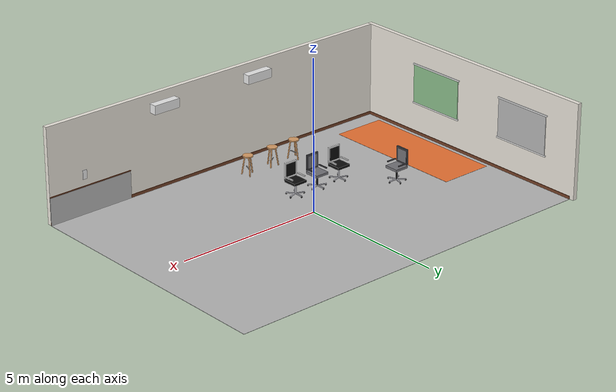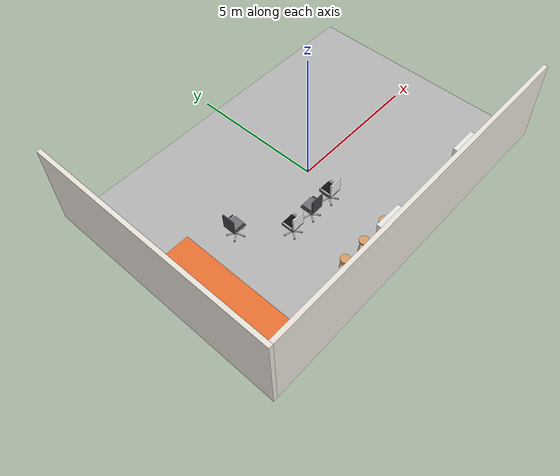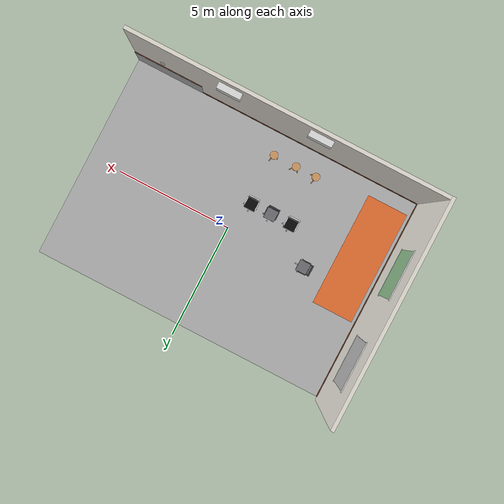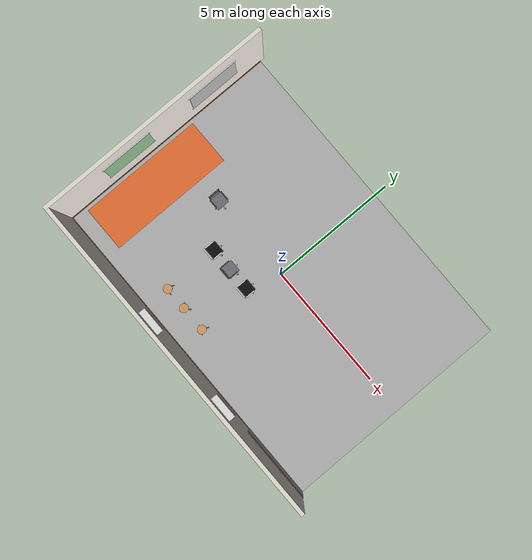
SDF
<sdf version="1.6">
 <world name="mahadev_lab">
  <include><uri>model://sun</uri></include>
  <model name="gplane">
   <static>true</static>
   <link name="plane">
    <collision name="plane">
     <geometry><plane><normal>0 0 1</normal></plane></geometry>
     <surface><friction><ode><mu>100</mu><mu2>100</mu2></ode></friction></surface>
    </collision>
   </link>
  </model>
  <model name="wall_back_windows">
   <static>true</static>
   <pose>-6.5750 0.0000 0.0000 0.0000 0.0000 0.0000</pose>
   <link name="link">
    <visual name="v1">
     <pose>0.0000 0.0000 1.6000 0.0000 0.0000 0.0000</pose>
     <geometry><box><size>0.15 9.3 3.2</size></box></geometry>
     <material>
      <ambient>0.93 0.91 0.87 1</ambient>
      <diffuse>0.93 0.91 0.87 1</diffuse>
      <specular>0.1 0.1 0.1 1</specular>
     </material>
    </visual>
    <collision name="c1">
     <pose>0.0000 0.0000 1.6000 0.0000 0.0000 0.0000</pose>
     <geometry><box><size>0.15 9.3 3.2</size></box></geometry>
     <surface><friction><ode><mu>100</mu><mu2>100</mu2></ode></friction></surface>
    </collision>
    <visual name="v2">
     <pose>0.0850 0.0000 0.0500 0.0000 0.0000 0.0000</pose>
     <geometry><box><size>0.02 9 0.1</size></box></geometry>
     <material>
      <ambient>0.45 0.25 0.15 1</ambient>
      <diffuse>0.45 0.25 0.15 1</diffuse>
      <specular>0.1 0.1 0.1 1</specular>
     </material>
    </visual>
    <visual name="v3">
     <pose>0.0950 -1.4000 1.7500 0.0000 0.0000 0.0000</pose>
     <geometry><box><size>0.03 2 1.3</size></box></geometry>
     <material>
      <ambient>0.55 0.75 0.55 1</ambient>
      <diffuse>0.55 0.75 0.55 1</diffuse>
      <specular>0.1 0.1 0.1 1</specular>
     </material>
    </visual>
    <visual name="v4">
     <pose>0.0950 -1.4000 1.0800 0.0000 0.0000 0.0000</pose>
     <geometry><box><size>0.035 2.08 0.05</size></box></geometry>
     <material>
      <ambient>0.92 0.92 0.92 1</ambient>
      <diffuse>0.92 0.92 0.92 1</diffuse>
      <specular>0.1 0.1 0.1 1</specular>
     </material>
    </visual>
    <visual name="v5">
     <pose>0.0950 -1.4000 2.4200 0.0000 0.0000 0.0000</pose>
     <geometry><box><size>0.035 2.08 0.05</size></box></geometry>
     <material>
      <ambient>0.92 0.92 0.92 1</ambient>
      <diffuse>0.92 0.92 0.92 1</diffuse>
      <specular>0.1 0.1 0.1 1</specular>
     </material>
    </visual>
    <visual name="v6">
     <pose>0.0950 2.4000 1.7500 0.0000 0.0000 0.0000</pose>
     <geometry><box><size>0.03 2 1.3</size></box></geometry>
     <material>
      <script>
       <uri>model://mahadev_lab_media/materials/scripts</uri>
       <uri>model://mahadev_lab_media/materials/textures</uri>
       <name>Mahadev/blinds_1_1</name>
      </script>
     </material>
    </visual>
    <visual name="v7">
     <pose>0.0950 2.4000 1.0800 0.0000 0.0000 0.0000</pose>
     <geometry><box><size>0.035 2.08 0.05</size></box></geometry>
     <material>
      <ambient>0.92 0.92 0.92 1</ambient>
      <diffuse>0.92 0.92 0.92 1</diffuse>
      <specular>0.1 0.1 0.1 1</specular>
     </material>
    </visual>
    <visual name="v8">
     <pose>0.0950 2.4000 2.4200 0.0000 0.0000 0.0000</pose>
     <geometry><box><size>0.035 2.08 0.05</size></box></geometry>
     <material>
      <ambient>0.92 0.92 0.92 1</ambient>
      <diffuse>0.92 0.92 0.92 1</diffuse>
      <specular>0.1 0.1 0.1 1</specular>
     </material>
    </visual>
   </link>
  </model>
  <model name="wall_right_pcs">
   <static>true</static>
   <pose>0.0000 -4.5750 0.0000 0.0000 0.0000 0.0000</pose>
   <link name="link">
    <visual name="v1">
     <pose>0.0000 0.0000 1.6000 0.0000 0.0000 0.0000</pose>
     <geometry><box><size>13 0.15 3.2</size></box></geometry>
     <material>
      <ambient>0.93 0.91 0.87 1</ambient>
      <diffuse>0.93 0.91 0.87 1</diffuse>
      <specular>0.1 0.1 0.1 1</specular>
     </material>
    </visual>
    <collision name="c1">
     <pose>0.0000 0.0000 1.6000 0.0000 0.0000 0.0000</pose>
     <geometry><box><size>13 0.15 3.2</size></box></geometry>
     <surface><friction><ode><mu>100</mu><mu2>100</mu2></ode></friction></surface>
    </collision>
    <visual name="v2">
     <pose>0.0000 0.0850 0.0500 0.0000 0.0000 0.0000</pose>
     <geometry><box><size>13 0.02 0.1</size></box></geometry>
     <material>
      <ambient>0.45 0.25 0.15 1</ambient>
      <diffuse>0.45 0.25 0.15 1</diffuse>
      <specular>0.1 0.1 0.1 1</specular>
     </material>
    </visual>
    <visual name="v3">
     <pose>5.0000 0.0870 0.4500 0.0000 0.0000 0.0000</pose>
     <geometry><box><size>3 0.02 0.9</size></box></geometry>
     <material>
      <script>
       <uri>model://mahadev_lab_media/materials/scripts</uri>
       <uri>model://mahadev_lab_media/materials/textures</uri>
       <name>Mahadev/wall_slats_5_1</name>
      </script>
     </material>
    </visual>
    <visual name="v4">
     <pose>5.0000 0.0870 0.9150 0.0000 0.0000 0.0000</pose>
     <geometry><box><size>3 0.04 0.03</size></box></geometry>
     <material>
      <ambient>0.45 0.25 0.15 1</ambient>
      <diffuse>0.45 0.25 0.15 1</diffuse>
      <specular>0.1 0.1 0.1 1</specular>
     </material>
    </visual>
    <visual name="v5">
     <pose>-1.5000 0.2050 2.7500 0.0000 0.0000 0.0000</pose>
     <geometry><box><size>0.95 0.25 0.3</size></box></geometry>
     <material>
      <ambient>0.92 0.92 0.92 1</ambient>
      <diffuse>0.92 0.92 0.92 1</diffuse>
      <specular>0.1 0.1 0.1 1</specular>
     </material>
    </visual>
    <visual name="v6">
     <pose>2.2000 0.2050 2.7500 0.0000 0.0000 0.0000</pose>
     <geometry><box><size>0.95 0.25 0.3</size></box></geometry>
     <material>
      <ambient>0.92 0.92 0.92 1</ambient>
      <diffuse>0.92 0.92 0.92 1</diffuse>
      <specular>0.1 0.1 0.1 1</specular>
     </material>
    </visual>
    <visual name="v7">
     <pose>5.2000 0.0850 1.3000 0.0000 0.0000 0.0000</pose>
     <geometry><box><size>0.15 0.02 0.3</size></box></geometry>
     <material>
      <ambient>0.92 0.92 0.92 1</ambient>
      <diffuse>0.92 0.92 0.92 1</diffuse>
      <specular>0.1 0.1 0.1 1</specular>
     </material>
    </visual>
   </link>
  </model>
  <model name="floor_tiles">
   <static>true</static>
   <link name="link">
    <visual name="v1">
     <pose>0.0000 0.0000 -0.0050 0.0000 0.0000 0.0000</pose>
     <geometry><box><size>13 9 0.01</size></box></geometry>
     <material>
      <script>
       <uri>model://mahadev_lab_media/materials/scripts</uri>
       <uri>model://mahadev_lab_media/materials/textures</uri>
       <name>Mahadev/floor_tiles_5.4_3.8</name>
      </script>
     </material>
    </visual>
   </link>
  </model>
  <model name="stool_pc_0">
   <static>true</static>
   <pose>-2.2000 -3.4500 0.0000 0.0000 0.0000 1.6058</pose>
   <link name="link">
    <visual name="v1">
     <pose>0.0000 0.0000 0.6400 0.0000 0.0000 0.0000</pose>
     <geometry><cylinder><radius>0.17</radius><length>0.04</length></cylinder></geometry>
     <material>
      <ambient>0.85 0.62 0.4 1</ambient>
      <diffuse>0.85 0.62 0.4 1</diffuse>
      <specular>0.1 0.1 0.1 1</specular>
     </material>
    </visual>
    <visual name="v2">
     <pose>0.1500 0.0000 0.3100 0.0000 -0.1599 0.0000</pose>
     <geometry><cylinder><radius>0.022</radius><length>0.63</length></cylinder></geometry>
     <material>
      <ambient>0.85 0.62 0.4 1</ambient>
      <diffuse>0.85 0.62 0.4 1</diffuse>
      <specular>0.1 0.1 0.1 1</specular>
     </material>
    </visual>
    <visual name="v3">
     <pose>-0.0750 0.1299 0.3100 0.0000 -0.1599 2.0944</pose>
     <geometry><cylinder><radius>0.022</radius><length>0.63</length></cylinder></geometry>
     <material>
      <ambient>0.85 0.62 0.4 1</ambient>
      <diffuse>0.85 0.62 0.4 1</diffuse>
      <specular>0.1 0.1 0.1 1</specular>
     </material>
    </visual>
    <visual name="v4">
     <pose>-0.0750 -0.1299 0.3100 0.0000 -0.1599 4.1888</pose>
     <geometry><cylinder><radius>0.022</radius><length>0.63</length></cylinder></geometry>
     <material>
      <ambient>0.85 0.62 0.4 1</ambient>
      <diffuse>0.85 0.62 0.4 1</diffuse>
      <specular>0.1 0.1 0.1 1</specular>
     </material>
    </visual>
    <visual name="v5">
     <pose>0.0000 0.0000 0.2200 0.0000 0.0000 0.0000</pose>
     <geometry><box><size>0.3 0.02 0.02</size></box></geometry>
     <material>
      <ambient>0.05 0.05 0.05 1</ambient>
      <diffuse>0.05 0.05 0.05 1</diffuse>
      <specular>0.1 0.1 0.1 1</specular>
     </material>
    </visual>
    <collision name="c6">
     <pose>0.0000 0.0000 0.3300 0 0 0</pose>
     <geometry><cylinder><radius>0.2</radius><length>0.66</length></cylinder></geometry>
    </collision>
   </link>
  </model>
  <model name="stool_pc_1">
   <static>true</static>
   <pose>-1.3000 -3.4500 0.0000 0.0000 0.0000 0.6207</pose>
   <link name="link">
    <visual name="v1">
     <pose>0.0000 0.0000 0.6400 0.0000 0.0000 0.0000</pose>
     <geometry><cylinder><radius>0.17</radius><length>0.04</length></cylinder></geometry>
     <material>
      <ambient>0.85 0.62 0.4 1</ambient>
      <diffuse>0.85 0.62 0.4 1</diffuse>
      <specular>0.1 0.1 0.1 1</specular>
     </material>
    </visual>
    <visual name="v2">
     <pose>0.1500 0.0000 0.3100 0.0000 -0.1599 0.0000</pose>
     <geometry><cylinder><radius>0.022</radius><length>0.63</length></cylinder></geometry>
     <material>
      <ambient>0.85 0.62 0.4 1</ambient>
      <diffuse>0.85 0.62 0.4 1</diffuse>
      <specular>0.1 0.1 0.1 1</specular>
     </material>
    </visual>
    <visual name="v3">
     <pose>-0.0750 0.1299 0.3100 0.0000 -0.1599 2.0944</pose>
     <geometry><cylinder><radius>0.022</radius><length>0.63</length></cylinder></geometry>
     <material>
      <ambient>0.85 0.62 0.4 1</ambient>
      <diffuse>0.85 0.62 0.4 1</diffuse>
      <specular>0.1 0.1 0.1 1</specular>
     </material>
    </visual>
    <visual name="v4">
     <pose>-0.0750 -0.1299 0.3100 0.0000 -0.1599 4.1888</pose>
     <geometry><cylinder><radius>0.022</radius><length>0.63</length></cylinder></geometry>
     <material>
      <ambient>0.85 0.62 0.4 1</ambient>
      <diffuse>0.85 0.62 0.4 1</diffuse>
      <specular>0.1 0.1 0.1 1</specular>
     </material>
    </visual>
    <visual name="v5">
     <pose>0.0000 0.0000 0.2200 0.0000 0.0000 0.0000</pose>
     <geometry><box><size>0.3 0.02 0.02</size></box></geometry>
     <material>
      <ambient>0.05 0.05 0.05 1</ambient>
      <diffuse>0.05 0.05 0.05 1</diffuse>
      <specular>0.1 0.1 0.1 1</specular>
     </material>
    </visual>
    <collision name="c6">
     <pose>0.0000 0.0000 0.3300 0 0 0</pose>
     <geometry><cylinder><radius>0.2</radius><length>0.66</length></cylinder></geometry>
    </collision>
   </link>
  </model>
  <model name="stool_pc_2">
   <static>true</static>
   <pose>-0.3000 -3.4500 0.0000 0.0000 0.0000 1.1836</pose>
   <link name="link">
    <visual name="v1">
     <pose>0.0000 0.0000 0.6400 0.0000 0.0000 0.0000</pose>
     <geometry><cylinder><radius>0.17</radius><length>0.04</length></cylinder></geometry>
     <material>
      <ambient>0.85 0.62 0.4 1</ambient>
      <diffuse>0.85 0.62 0.4 1</diffuse>
      <specular>0.1 0.1 0.1 1</specular>
     </material>
    </visual>
    <visual name="v2">
     <pose>0.1500 0.0000 0.3100 0.0000 -0.1599 0.0000</pose>
     <geometry><cylinder><radius>0.022</radius><length>0.63</length></cylinder></geometry>
     <material>
      <ambient>0.85 0.62 0.4 1</ambient>
      <diffuse>0.85 0.62 0.4 1</diffuse>
      <specular>0.1 0.1 0.1 1</specular>
     </material>
    </visual>
    <visual name="v3">
     <pose>-0.0750 0.1299 0.3100 0.0000 -0.1599 2.0944</pose>
     <geometry><cylinder><radius>0.022</radius><length>0.63</length></cylinder></geometry>
     <material>
      <ambient>0.85 0.62 0.4 1</ambient>
      <diffuse>0.85 0.62 0.4 1</diffuse>
      <specular>0.1 0.1 0.1 1</specular>
     </material>
    </visual>
    <visual name="v4">
     <pose>-0.0750 -0.1299 0.3100 0.0000 -0.1599 4.1888</pose>
     <geometry><cylinder><radius>0.022</radius><length>0.63</length></cylinder></geometry>
     <material>
      <ambient>0.85 0.62 0.4 1</ambient>
      <diffuse>0.85 0.62 0.4 1</diffuse>
      <specular>0.1 0.1 0.1 1</specular>
     </material>
    </visual>
    <visual name="v5">
     <pose>0.0000 0.0000 0.2200 0.0000 0.0000 0.0000</pose>
     <geometry><box><size>0.3 0.02 0.02</size></box></geometry>
     <material>
      <ambient>0.05 0.05 0.05 1</ambient>
      <diffuse>0.05 0.05 0.05 1</diffuse>
      <specular>0.1 0.1 0.1 1</specular>
     </material>
    </visual>
    <collision name="c6">
     <pose>0.0000 0.0000 0.3300 0 0 0</pose>
     <geometry><cylinder><radius>0.2</radius><length>0.66</length></cylinder></geometry>
    </collision>
   </link>
  </model>
  <model name="orange_mat">
   <static>true</static>
   <pose>-5.4500 -1.4000 0.0000 0.0000 0.0000 0.0000</pose>
   <link name="link">
    <visual name="v1">
     <pose>0.0000 0.0000 0.0025 0.0000 0.0000 0.0000</pose>
     <geometry><box><size>1.8 5 0.005</size></box></geometry>
     <material>
      <ambient>0.93 0.45 0.2 1</ambient>
      <diffuse>0.93 0.45 0.2 1</diffuse>
      <specular>0.1 0.1 0.1 1</specular>
     </material>
    </visual>
    <collision name="c1">
     <pose>0.0000 0.0000 0.0025 0.0000 0.0000 0.0000</pose>
     <geometry><box><size>1.8 5 0.005</size></box></geometry>
     <surface><friction><ode><mu>100</mu><mu2>100</mu2></ode></friction></surface>
    </collision>
   </link>
  </model>
  <model name="chair_r_0">
   <static>true</static>
   <pose>-2.2000 -1.3000 0.0000 0.0000 0.0000 1.5708</pose>
   <link name="link">
    <visual name="v1">
     <pose>0.1500 0.0000 0.0600 0.0000 0.0000 0.0000</pose>
     <geometry><box><size>0.3 0.04 0.03</size></box></geometry>
     <material>
      <ambient>0.75 0.75 0.78 1</ambient>
      <diffuse>0.75 0.75 0.78 1</diffuse>
      <specular>0.1 0.1 0.1 1</specular>
     </material>
    </visual>
    <visual name="v2">
     <pose>0.2900 0.0000 0.0300 0.0000 0.0000 0.0000</pose>
     <geometry><sphere><radius>0.03</radius></sphere></geometry>
     <material>
      <ambient>0.05 0.05 0.05 1</ambient>
      <diffuse>0.05 0.05 0.05 1</diffuse>
      <specular>0.1 0.1 0.1 1</specular>
     </material>
    </visual>
    <visual name="v3">
     <pose>0.0464 0.1427 0.0600 0.0000 0.0000 1.2566</pose>
     <geometry><box><size>0.3 0.04 0.03</size></box></geometry>
     <material>
      <ambient>0.75 0.75 0.78 1</ambient>
      <diffuse>0.75 0.75 0.78 1</diffuse>
      <specular>0.1 0.1 0.1 1</specular>
     </material>
    </visual>
    <visual name="v4">
     <pose>0.0896 0.2758 0.0300 0.0000 0.0000 0.0000</pose>
     <geometry><sphere><radius>0.03</radius></sphere></geometry>
     <material>
      <ambient>0.05 0.05 0.05 1</ambient>
      <diffuse>0.05 0.05 0.05 1</diffuse>
      <specular>0.1 0.1 0.1 1</specular>
     </material>
    </visual>
    <visual name="v5">
     <pose>-0.1214 0.0882 0.0600 0.0000 0.0000 2.5133</pose>
     <geometry><box><size>0.3 0.04 0.03</size></box></geometry>
     <material>
      <ambient>0.75 0.75 0.78 1</ambient>
      <diffuse>0.75 0.75 0.78 1</diffuse>
      <specular>0.1 0.1 0.1 1</specular>
     </material>
    </visual>
    <visual name="v6">
     <pose>-0.2346 0.1705 0.0300 0.0000 0.0000 0.0000</pose>
     <geometry><sphere><radius>0.03</radius></sphere></geometry>
     <material>
      <ambient>0.05 0.05 0.05 1</ambient>
      <diffuse>0.05 0.05 0.05 1</diffuse>
      <specular>0.1 0.1 0.1 1</specular>
     </material>
    </visual>
    <visual name="v7">
     <pose>-0.1214 -0.0882 0.0600 0.0000 0.0000 3.7699</pose>
     <geometry><box><size>0.3 0.04 0.03</size></box></geometry>
     <material>
      <ambient>0.75 0.75 0.78 1</ambient>
      <diffuse>0.75 0.75 0.78 1</diffuse>
      <specular>0.1 0.1 0.1 1</specular>
     </material>
    </visual>
    <visual name="v8">
     <pose>-0.2346 -0.1705 0.0300 0.0000 0.0000 0.0000</pose>
     <geometry><sphere><radius>0.03</radius></sphere></geometry>
     <material>
      <ambient>0.05 0.05 0.05 1</ambient>
      <diffuse>0.05 0.05 0.05 1</diffuse>
      <specular>0.1 0.1 0.1 1</specular>
     </material>
    </visual>
    <visual name="v9">
     <pose>0.0464 -0.1427 0.0600 0.0000 0.0000 5.0265</pose>
     <geometry><box><size>0.3 0.04 0.03</size></box></geometry>
     <material>
      <ambient>0.75 0.75 0.78 1</ambient>
      <diffuse>0.75 0.75 0.78 1</diffuse>
      <specular>0.1 0.1 0.1 1</specular>
     </material>
    </visual>
    <visual name="v10">
     <pose>0.0896 -0.2758 0.0300 0.0000 0.0000 0.0000</pose>
     <geometry><sphere><radius>0.03</radius></sphere></geometry>
     <material>
      <ambient>0.05 0.05 0.05 1</ambient>
      <diffuse>0.05 0.05 0.05 1</diffuse>
      <specular>0.1 0.1 0.1 1</specular>
     </material>
    </visual>
    <visual name="v11">
     <pose>0.0000 0.0000 0.2700 0.0000 0.0000 0.0000</pose>
     <geometry><cylinder><radius>0.03</radius><length>0.4</length></cylinder></geometry>
     <material>
      <ambient>0.75 0.75 0.78 1</ambient>
      <diffuse>0.75 0.75 0.78 1</diffuse>
      <specular>0.1 0.1 0.1 1</specular>
     </material>
    </visual>
    <visual name="v12">
     <pose>0.0000 0.0000 0.4800 0.0000 0.0000 0.0000</pose>
     <geometry><box><size>0.48 0.48 0.08</size></box></geometry>
     <material>
      <ambient>0.05 0.05 0.05 1</ambient>
      <diffuse>0.05 0.05 0.05 1</diffuse>
      <specular>0.1 0.1 0.1 1</specular>
     </material>
    </visual>
    <visual name="v13">
     <pose>-0.2400 0.0000 0.8000 0.0000 0.0000 0.0000</pose>
     <geometry><box><size>0.05 0.46 0.52</size></box></geometry>
     <material>
      <ambient>0.92 0.92 0.92 1</ambient>
      <diffuse>0.92 0.92 0.92 1</diffuse>
      <specular>0.1 0.1 0.1 1</specular>
     </material>
    </visual>
    <visual name="v14">
     <pose>-0.2150 0.0000 0.8000 0.0000 0.0000 0.0000</pose>
     <geometry><box><size>0.01 0.38 0.42</size></box></geometry>
     <material>
      <ambient>0.05 0.05 0.05 1</ambient>
      <diffuse>0.05 0.05 0.05 1</diffuse>
      <specular>0.1 0.1 0.1 1</specular>
     </material>
    </visual>
    <visual name="v15">
     <pose>-0.0200 -0.2500 0.6200 0.0000 0.0000 0.0000</pose>
     <geometry><box><size>0.36 0.04 0.03</size></box></geometry>
     <material>
      <ambient>0.92 0.92 0.92 1</ambient>
      <diffuse>0.92 0.92 0.92 1</diffuse>
      <specular>0.1 0.1 0.1 1</specular>
     </material>
    </visual>
    <visual name="v16">
     <pose>-0.0200 0.2500 0.6200 0.0000 0.0000 0.0000</pose>
     <geometry><box><size>0.36 0.04 0.03</size></box></geometry>
     <material>
      <ambient>0.92 0.92 0.92 1</ambient>
      <diffuse>0.92 0.92 0.92 1</diffuse>
      <specular>0.1 0.1 0.1 1</specular>
     </material>
    </visual>
    <collision name="c17">
     <pose>0.0000 0.0000 0.2750 0 0 0</pose>
     <geometry><cylinder><radius>0.3</radius><length>0.55</length></cylinder></geometry>
    </collision>
   </link>
  </model>
  <model name="chair_r_1">
   <static>true</static>
   <pose>-1.3000 -1.3000 0.0000 0.0000 0.0000 1.5708</pose>
   <link name="link">
    <visual name="v1">
     <pose>0.1500 0.0000 0.0600 0.0000 0.0000 0.0000</pose>
     <geometry><box><size>0.3 0.04 0.03</size></box></geometry>
     <material>
      <ambient>0.75 0.75 0.78 1</ambient>
      <diffuse>0.75 0.75 0.78 1</diffuse>
      <specular>0.1 0.1 0.1 1</specular>
     </material>
    </visual>
    <visual name="v2">
     <pose>0.2900 0.0000 0.0300 0.0000 0.0000 0.0000</pose>
     <geometry><sphere><radius>0.03</radius></sphere></geometry>
     <material>
      <ambient>0.05 0.05 0.05 1</ambient>
      <diffuse>0.05 0.05 0.05 1</diffuse>
      <specular>0.1 0.1 0.1 1</specular>
     </material>
    </visual>
    <visual name="v3">
     <pose>0.0464 0.1427 0.0600 0.0000 0.0000 1.2566</pose>
     <geometry><box><size>0.3 0.04 0.03</size></box></geometry>
     <material>
      <ambient>0.75 0.75 0.78 1</ambient>
      <diffuse>0.75 0.75 0.78 1</diffuse>
      <specular>0.1 0.1 0.1 1</specular>
     </material>
    </visual>
    <visual name="v4">
     <pose>0.0896 0.2758 0.0300 0.0000 0.0000 0.0000</pose>
     <geometry><sphere><radius>0.03</radius></sphere></geometry>
     <material>
      <ambient>0.05 0.05 0.05 1</ambient>
      <diffuse>0.05 0.05 0.05 1</diffuse>
      <specular>0.1 0.1 0.1 1</specular>
     </material>
    </visual>
    <visual name="v5">
     <pose>-0.1214 0.0882 0.0600 0.0000 0.0000 2.5133</pose>
     <geometry><box><size>0.3 0.04 0.03</size></box></geometry>
     <material>
      <ambient>0.75 0.75 0.78 1</ambient>
      <diffuse>0.75 0.75 0.78 1</diffuse>
      <specular>0.1 0.1 0.1 1</specular>
     </material>
    </visual>
    <visual name="v6">
     <pose>-0.2346 0.1705 0.0300 0.0000 0.0000 0.0000</pose>
     <geometry><sphere><radius>0.03</radius></sphere></geometry>
     <material>
      <ambient>0.05 0.05 0.05 1</ambient>
      <diffuse>0.05 0.05 0.05 1</diffuse>
      <specular>0.1 0.1 0.1 1</specular>
     </material>
    </visual>
    <visual name="v7">
     <pose>-0.1214 -0.0882 0.0600 0.0000 0.0000 3.7699</pose>
     <geometry><box><size>0.3 0.04 0.03</size></box></geometry>
     <material>
      <ambient>0.75 0.75 0.78 1</ambient>
      <diffuse>0.75 0.75 0.78 1</diffuse>
      <specular>0.1 0.1 0.1 1</specular>
     </material>
    </visual>
    <visual name="v8">
     <pose>-0.2346 -0.1705 0.0300 0.0000 0.0000 0.0000</pose>
     <geometry><sphere><radius>0.03</radius></sphere></geometry>
     <material>
      <ambient>0.05 0.05 0.05 1</ambient>
      <diffuse>0.05 0.05 0.05 1</diffuse>
      <specular>0.1 0.1 0.1 1</specular>
     </material>
    </visual>
    <visual name="v9">
     <pose>0.0464 -0.1427 0.0600 0.0000 0.0000 5.0265</pose>
     <geometry><box><size>0.3 0.04 0.03</size></box></geometry>
     <material>
      <ambient>0.75 0.75 0.78 1</ambient>
      <diffuse>0.75 0.75 0.78 1</diffuse>
      <specular>0.1 0.1 0.1 1</specular>
     </material>
    </visual>
    <visual name="v10">
     <pose>0.0896 -0.2758 0.0300 0.0000 0.0000 0.0000</pose>
     <geometry><sphere><radius>0.03</radius></sphere></geometry>
     <material>
      <ambient>0.05 0.05 0.05 1</ambient>
      <diffuse>0.05 0.05 0.05 1</diffuse>
      <specular>0.1 0.1 0.1 1</specular>
     </material>
    </visual>
    <visual name="v11">
     <pose>0.0000 0.0000 0.2700 0.0000 0.0000 0.0000</pose>
     <geometry><cylinder><radius>0.03</radius><length>0.4</length></cylinder></geometry>
     <material>
      <ambient>0.05 0.05 0.05 1</ambient>
      <diffuse>0.05 0.05 0.05 1</diffuse>
      <specular>0.1 0.1 0.1 1</specular>
     </material>
    </visual>
    <visual name="v12">
     <pose>0.0000 0.0000 0.4800 0.0000 0.0000 0.0000</pose>
     <geometry><box><size>0.48 0.48 0.08</size></box></geometry>
     <material>
      <ambient>0.45 0.45 0.47 1</ambient>
      <diffuse>0.45 0.45 0.47 1</diffuse>
      <specular>0.1 0.1 0.1 1</specular>
     </material>
    </visual>
    <visual name="v13">
     <pose>-0.2400 0.0000 0.8000 0.0000 0.0000 0.0000</pose>
     <geometry><box><size>0.05 0.46 0.52</size></box></geometry>
     <material>
      <ambient>0.25 0.25 0.27 1</ambient>
      <diffuse>0.25 0.25 0.27 1</diffuse>
      <specular>0.1 0.1 0.1 1</specular>
     </material>
    </visual>
    <visual name="v14">
     <pose>-0.2150 0.0000 0.8000 0.0000 0.0000 0.0000</pose>
     <geometry><box><size>0.01 0.38 0.42</size></box></geometry>
     <material>
      <ambient>0.45 0.45 0.47 1</ambient>
      <diffuse>0.45 0.45 0.47 1</diffuse>
      <specular>0.1 0.1 0.1 1</specular>
     </material>
    </visual>
    <visual name="v15">
     <pose>-0.0200 -0.2500 0.6200 0.0000 0.0000 0.0000</pose>
     <geometry><box><size>0.36 0.04 0.03</size></box></geometry>
     <material>
      <ambient>0.25 0.25 0.27 1</ambient>
      <diffuse>0.25 0.25 0.27 1</diffuse>
      <specular>0.1 0.1 0.1 1</specular>
     </material>
    </visual>
    <visual name="v16">
     <pose>-0.0200 0.2500 0.6200 0.0000 0.0000 0.0000</pose>
     <geometry><box><size>0.36 0.04 0.03</size></box></geometry>
     <material>
      <ambient>0.25 0.25 0.27 1</ambient>
      <diffuse>0.25 0.25 0.27 1</diffuse>
      <specular>0.1 0.1 0.1 1</specular>
     </material>
    </visual>
    <collision name="c17">
     <pose>0.0000 0.0000 0.2750 0 0 0</pose>
     <geometry><cylinder><radius>0.3</radius><length>0.55</length></cylinder></geometry>
    </collision>
   </link>
  </model>
  <model name="chair_r_2">
   <static>true</static>
   <pose>-0.4000 -1.3000 0.0000 0.0000 0.0000 1.5708</pose>
   <link name="link">
    <visual name="v1">
     <pose>0.1500 0.0000 0.0600 0.0000 0.0000 0.0000</pose>
     <geometry><box><size>0.3 0.04 0.03</size></box></geometry>
     <material>
      <ambient>0.75 0.75 0.78 1</ambient>
      <diffuse>0.75 0.75 0.78 1</diffuse>
      <specular>0.1 0.1 0.1 1</specular>
     </material>
    </visual>
    <visual name="v2">
     <pose>0.2900 0.0000 0.0300 0.0000 0.0000 0.0000</pose>
     <geometry><sphere><radius>0.03</radius></sphere></geometry>
     <material>
      <ambient>0.05 0.05 0.05 1</ambient>
      <diffuse>0.05 0.05 0.05 1</diffuse>
      <specular>0.1 0.1 0.1 1</specular>
     </material>
    </visual>
    <visual name="v3">
     <pose>0.0464 0.1427 0.0600 0.0000 0.0000 1.2566</pose>
     <geometry><box><size>0.3 0.04 0.03</size></box></geometry>
     <material>
      <ambient>0.75 0.75 0.78 1</ambient>
      <diffuse>0.75 0.75 0.78 1</diffuse>
      <specular>0.1 0.1 0.1 1</specular>
     </material>
    </visual>
    <visual name="v4">
     <pose>0.0896 0.2758 0.0300 0.0000 0.0000 0.0000</pose>
     <geometry><sphere><radius>0.03</radius></sphere></geometry>
     <material>
      <ambient>0.05 0.05 0.05 1</ambient>
      <diffuse>0.05 0.05 0.05 1</diffuse>
      <specular>0.1 0.1 0.1 1</specular>
     </material>
    </visual>
    <visual name="v5">
     <pose>-0.1214 0.0882 0.0600 0.0000 0.0000 2.5133</pose>
     <geometry><box><size>0.3 0.04 0.03</size></box></geometry>
     <material>
      <ambient>0.75 0.75 0.78 1</ambient>
      <diffuse>0.75 0.75 0.78 1</diffuse>
      <specular>0.1 0.1 0.1 1</specular>
     </material>
    </visual>
    <visual name="v6">
     <pose>-0.2346 0.1705 0.0300 0.0000 0.0000 0.0000</pose>
     <geometry><sphere><radius>0.03</radius></sphere></geometry>
     <material>
      <ambient>0.05 0.05 0.05 1</ambient>
      <diffuse>0.05 0.05 0.05 1</diffuse>
      <specular>0.1 0.1 0.1 1</specular>
     </material>
    </visual>
    <visual name="v7">
     <pose>-0.1214 -0.0882 0.0600 0.0000 0.0000 3.7699</pose>
     <geometry><box><size>0.3 0.04 0.03</size></box></geometry>
     <material>
      <ambient>0.75 0.75 0.78 1</ambient>
      <diffuse>0.75 0.75 0.78 1</diffuse>
      <specular>0.1 0.1 0.1 1</specular>
     </material>
    </visual>
    <visual name="v8">
     <pose>-0.2346 -0.1705 0.0300 0.0000 0.0000 0.0000</pose>
     <geometry><sphere><radius>0.03</radius></sphere></geometry>
     <material>
      <ambient>0.05 0.05 0.05 1</ambient>
      <diffuse>0.05 0.05 0.05 1</diffuse>
      <specular>0.1 0.1 0.1 1</specular>
     </material>
    </visual>
    <visual name="v9">
     <pose>0.0464 -0.1427 0.0600 0.0000 0.0000 5.0265</pose>
     <geometry><box><size>0.3 0.04 0.03</size></box></geometry>
     <material>
      <ambient>0.75 0.75 0.78 1</ambient>
      <diffuse>0.75 0.75 0.78 1</diffuse>
      <specular>0.1 0.1 0.1 1</specular>
     </material>
    </visual>
    <visual name="v10">
     <pose>0.0896 -0.2758 0.0300 0.0000 0.0000 0.0000</pose>
     <geometry><sphere><radius>0.03</radius></sphere></geometry>
     <material>
      <ambient>0.05 0.05 0.05 1</ambient>
      <diffuse>0.05 0.05 0.05 1</diffuse>
      <specular>0.1 0.1 0.1 1</specular>
     </material>
    </visual>
    <visual name="v11">
     <pose>0.0000 0.0000 0.2700 0.0000 0.0000 0.0000</pose>
     <geometry><cylinder><radius>0.03</radius><length>0.4</length></cylinder></geometry>
     <material>
      <ambient>0.75 0.75 0.78 1</ambient>
      <diffuse>0.75 0.75 0.78 1</diffuse>
      <specular>0.1 0.1 0.1 1</specular>
     </material>
    </visual>
    <visual name="v12">
     <pose>0.0000 0.0000 0.4800 0.0000 0.0000 0.0000</pose>
     <geometry><box><size>0.48 0.48 0.08</size></box></geometry>
     <material>
      <ambient>0.05 0.05 0.05 1</ambient>
      <diffuse>0.05 0.05 0.05 1</diffuse>
      <specular>0.1 0.1 0.1 1</specular>
     </material>
    </visual>
    <visual name="v13">
     <pose>-0.2400 0.0000 0.8000 0.0000 0.0000 0.0000</pose>
     <geometry><box><size>0.05 0.46 0.52</size></box></geometry>
     <material>
      <ambient>0.92 0.92 0.92 1</ambient>
      <diffuse>0.92 0.92 0.92 1</diffuse>
      <specular>0.1 0.1 0.1 1</specular>
     </material>
    </visual>
    <visual name="v14">
     <pose>-0.2150 0.0000 0.8000 0.0000 0.0000 0.0000</pose>
     <geometry><box><size>0.01 0.38 0.42</size></box></geometry>
     <material>
      <ambient>0.05 0.05 0.05 1</ambient>
      <diffuse>0.05 0.05 0.05 1</diffuse>
      <specular>0.1 0.1 0.1 1</specular>
     </material>
    </visual>
    <visual name="v15">
     <pose>-0.0200 -0.2500 0.6200 0.0000 0.0000 0.0000</pose>
     <geometry><box><size>0.36 0.04 0.03</size></box></geometry>
     <material>
      <ambient>0.92 0.92 0.92 1</ambient>
      <diffuse>0.92 0.92 0.92 1</diffuse>
      <specular>0.1 0.1 0.1 1</specular>
     </material>
    </visual>
    <visual name="v16">
     <pose>-0.0200 0.2500 0.6200 0.0000 0.0000 0.0000</pose>
     <geometry><box><size>0.36 0.04 0.03</size></box></geometry>
     <material>
      <ambient>0.92 0.92 0.92 1</ambient>
      <diffuse>0.92 0.92 0.92 1</diffuse>
      <specular>0.1 0.1 0.1 1</specular>
     </material>
    </visual>
    <collision name="c17">
     <pose>0.0000 0.0000 0.2750 0 0 0</pose>
     <geometry><cylinder><radius>0.3</radius><length>0.55</length></cylinder></geometry>
    </collision>
   </link>
  </model>
  <model name="chair_end_back">
   <static>true</static>
   <pose>-3.4500 0.0000 0.0000 0.0000 0.0000 0.0000</pose>
   <link name="link">
    <visual name="v1">
     <pose>0.1500 0.0000 0.0600 0.0000 0.0000 0.0000</pose>
     <geometry><box><size>0.3 0.04 0.03</size></box></geometry>
     <material>
      <ambient>0.75 0.75 0.78 1</ambient>
      <diffuse>0.75 0.75 0.78 1</diffuse>
      <specular>0.1 0.1 0.1 1</specular>
     </material>
    </visual>
    <visual name="v2">
     <pose>0.2900 0.0000 0.0300 0.0000 0.0000 0.0000</pose>
     <geometry><sphere><radius>0.03</radius></sphere></geometry>
     <material>
      <ambient>0.05 0.05 0.05 1</ambient>
      <diffuse>0.05 0.05 0.05 1</diffuse>
      <specular>0.1 0.1 0.1 1</specular>
     </material>
    </visual>
    <visual name="v3">
     <pose>0.0464 0.1427 0.0600 0.0000 0.0000 1.2566</pose>
     <geometry><box><size>0.3 0.04 0.03</size></box></geometry>
     <material>
      <ambient>0.75 0.75 0.78 1</ambient>
      <diffuse>0.75 0.75 0.78 1</diffuse>
      <specular>0.1 0.1 0.1 1</specular>
     </material>
    </visual>
    <visual name="v4">
     <pose>0.0896 0.2758 0.0300 0.0000 0.0000 0.0000</pose>
     <geometry><sphere><radius>0.03</radius></sphere></geometry>
     <material>
      <ambient>0.05 0.05 0.05 1</ambient>
      <diffuse>0.05 0.05 0.05 1</diffuse>
      <specular>0.1 0.1 0.1 1</specular>
     </material>
    </visual>
    <visual name="v5">
     <pose>-0.1214 0.0882 0.0600 0.0000 0.0000 2.5133</pose>
     <geometry><box><size>0.3 0.04 0.03</size></box></geometry>
     <material>
      <ambient>0.75 0.75 0.78 1</ambient>
      <diffuse>0.75 0.75 0.78 1</diffuse>
      <specular>0.1 0.1 0.1 1</specular>
     </material>
    </visual>
    <visual name="v6">
     <pose>-0.2346 0.1705 0.0300 0.0000 0.0000 0.0000</pose>
     <geometry><sphere><radius>0.03</radius></sphere></geometry>
     <material>
      <ambient>0.05 0.05 0.05 1</ambient>
      <diffuse>0.05 0.05 0.05 1</diffuse>
      <specular>0.1 0.1 0.1 1</specular>
     </material>
    </visual>
    <visual name="v7">
     <pose>-0.1214 -0.0882 0.0600 0.0000 0.0000 3.7699</pose>
     <geometry><box><size>0.3 0.04 0.03</size></box></geometry>
     <material>
      <ambient>0.75 0.75 0.78 1</ambient>
      <diffuse>0.75 0.75 0.78 1</diffuse>
      <specular>0.1 0.1 0.1 1</specular>
     </material>
    </visual>
    <visual name="v8">
     <pose>-0.2346 -0.1705 0.0300 0.0000 0.0000 0.0000</pose>
     <geometry><sphere><radius>0.03</radius></sphere></geometry>
     <material>
      <ambient>0.05 0.05 0.05 1</ambient>
      <diffuse>0.05 0.05 0.05 1</diffuse>
      <specular>0.1 0.1 0.1 1</specular>
     </material>
    </visual>
    <visual name="v9">
     <pose>0.0464 -0.1427 0.0600 0.0000 0.0000 5.0265</pose>
     <geometry><box><size>0.3 0.04 0.03</size></box></geometry>
     <material>
      <ambient>0.75 0.75 0.78 1</ambient>
      <diffuse>0.75 0.75 0.78 1</diffuse>
      <specular>0.1 0.1 0.1 1</specular>
     </material>
    </visual>
    <visual name="v10">
     <pose>0.0896 -0.2758 0.0300 0.0000 0.0000 0.0000</pose>
     <geometry><sphere><radius>0.03</radius></sphere></geometry>
     <material>
      <ambient>0.05 0.05 0.05 1</ambient>
      <diffuse>0.05 0.05 0.05 1</diffuse>
      <specular>0.1 0.1 0.1 1</specular>
     </material>
    </visual>
    <visual name="v11">
     <pose>0.0000 0.0000 0.2700 0.0000 0.0000 0.0000</pose>
     <geometry><cylinder><radius>0.03</radius><length>0.4</length></cylinder></geometry>
     <material>
      <ambient>0.05 0.05 0.05 1</ambient>
      <diffuse>0.05 0.05 0.05 1</diffuse>
      <specular>0.1 0.1 0.1 1</specular>
     </material>
    </visual>
    <visual name="v12">
     <pose>0.0000 0.0000 0.4800 0.0000 0.0000 0.0000</pose>
     <geometry><box><size>0.48 0.48 0.08</size></box></geometry>
     <material>
      <ambient>0.45 0.45 0.47 1</ambient>
      <diffuse>0.45 0.45 0.47 1</diffuse>
      <specular>0.1 0.1 0.1 1</specular>
     </material>
    </visual>
    <visual name="v13">
     <pose>-0.2400 0.0000 0.8000 0.0000 0.0000 0.0000</pose>
     <geometry><box><size>0.05 0.46 0.52</size></box></geometry>
     <material>
      <ambient>0.25 0.25 0.27 1</ambient>
      <diffuse>0.25 0.25 0.27 1</diffuse>
      <specular>0.1 0.1 0.1 1</specular>
     </material>
    </visual>
    <visual name="v14">
     <pose>-0.2150 0.0000 0.8000 0.0000 0.0000 0.0000</pose>
     <geometry><box><size>0.01 0.38 0.42</size></box></geometry>
     <material>
      <ambient>0.45 0.45 0.47 1</ambient>
      <diffuse>0.45 0.45 0.47 1</diffuse>
      <specular>0.1 0.1 0.1 1</specular>
     </material>
    </visual>
    <visual name="v15">
     <pose>-0.0200 -0.2500 0.6200 0.0000 0.0000 0.0000</pose>
     <geometry><box><size>0.36 0.04 0.03</size></box></geometry>
     <material>
      <ambient>0.25 0.25 0.27 1</ambient>
      <diffuse>0.25 0.25 0.27 1</diffuse>
      <specular>0.1 0.1 0.1 1</specular>
     </material>
    </visual>
    <visual name="v16">
     <pose>-0.0200 0.2500 0.6200 0.0000 0.0000 0.0000</pose>
     <geometry><box><size>0.36 0.04 0.03</size></box></geometry>
     <material>
      <ambient>0.25 0.25 0.27 1</ambient>
      <diffuse>0.25 0.25 0.27 1</diffuse>
      <specular>0.1 0.1 0.1 1</specular>
     </material>
    </visual>
    <collision name="c17">
     <pose>0.0000 0.0000 0.2750 0 0 0</pose>
     <geometry><cylinder><radius>0.3</radius><length>0.55</length></cylinder></geometry>
    </collision>
   </link>
  </model>
 </world>
</sdf>
